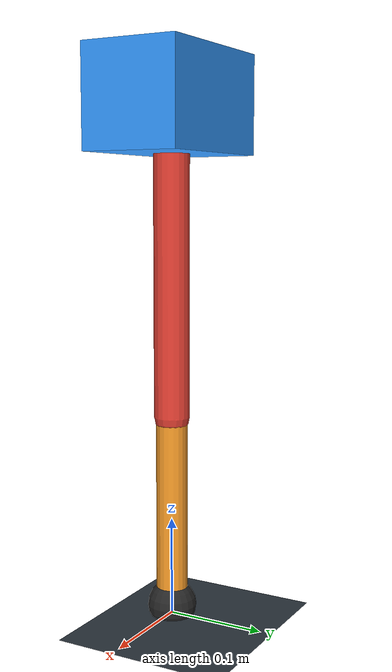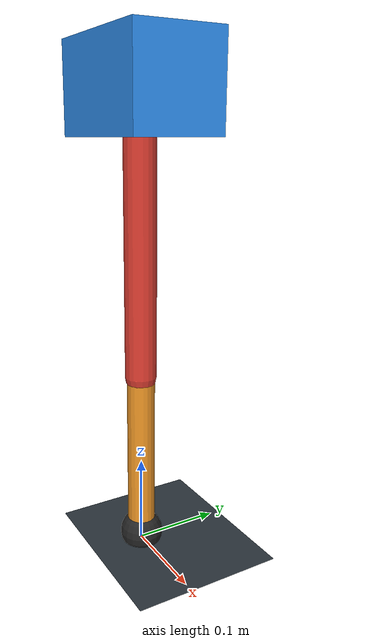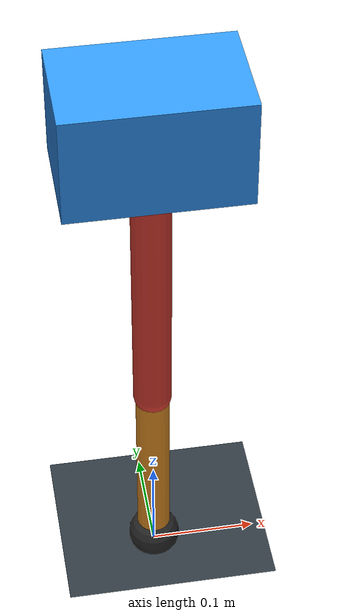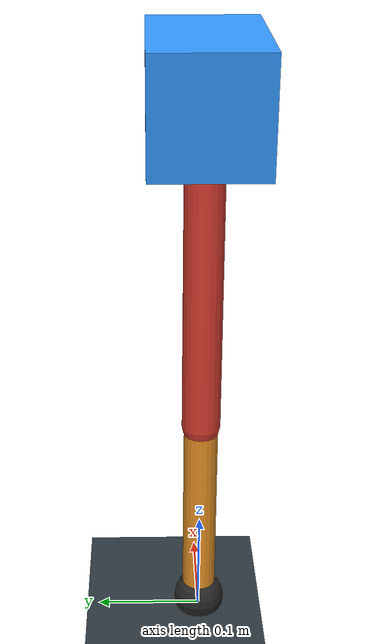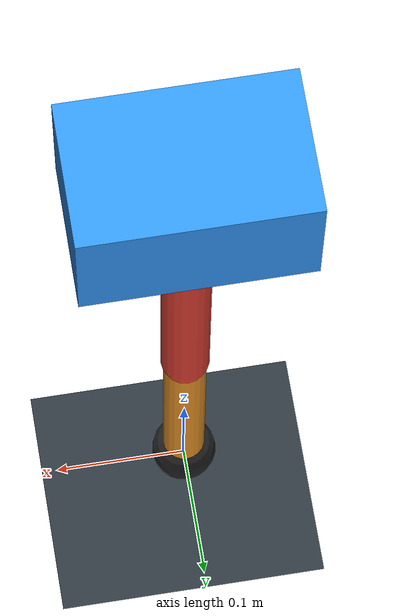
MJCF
<mujoco model="single_axis_two_bar">
  <compiler angle="radian" inertiafromgeom="true"/>
  <option timestep="0.001" integrator="implicitfast" gravity="0 0 -9.81"/>
  <default>
    <joint damping="0.08"/>
    <geom friction="1.2 0.01 0.0001" condim="3"/>
  </default>
  <worldbody>
    <geom name="floor" type="plane" size="5 5 0.1" rgba="0.18 0.22 0.25 1"/>
    <body name="carriage" pos="0 0 0.5180086249625311">
      <joint name="pole_slide" type="slide" axis="0 0 1"/>
      <geom name="payload" type="box" size="0.08 0.05 0.05" mass="3.5091856712141216" rgba="0.2 0.6 1 1"/>
      <body name="thigh" pos="0 0 0">
        <joint name="hip" type="hinge" axis="0 1 0"/>
        <geom name="thigh_link" type="capsule" fromto="0 0 0 0 0 -0.3114828192070914" size="0.018" mass="0.2219356245673709" rgba="0.9 0.25 0.2 1"/>
        <body name="shank" pos="0 0 -0.3114828192070914">
          <joint name="knee" type="hinge" axis="0 1 0"/>
          <geom name="shank_link" type="capsule" fromto="0 0 0 0 0 -0.19677349518727047" size="0.016" mass="0.14020371545326368" rgba="0.95 0.6 0.15 1"/>
          <geom name="foot" type="sphere" pos="0 0 -0.19677349518727047" size="0.025" mass="0.03" rgba="0.15 0.15 0.15 1"/>
          <site name="toe" pos="0 0 -0.19677349518727047" size="0.008"/>
        </body>
      </body>
    </body>
  </worldbody>
  <actuator>
    <motor name="hip_motor" joint="hip" ctrlrange="-40.806873981438926 40.806873981438926"/>
    <motor name="knee_motor" joint="knee" ctrlrange="-71.35858699058653 71.35858699058653"/>
  </actuator>
</mujoco>
